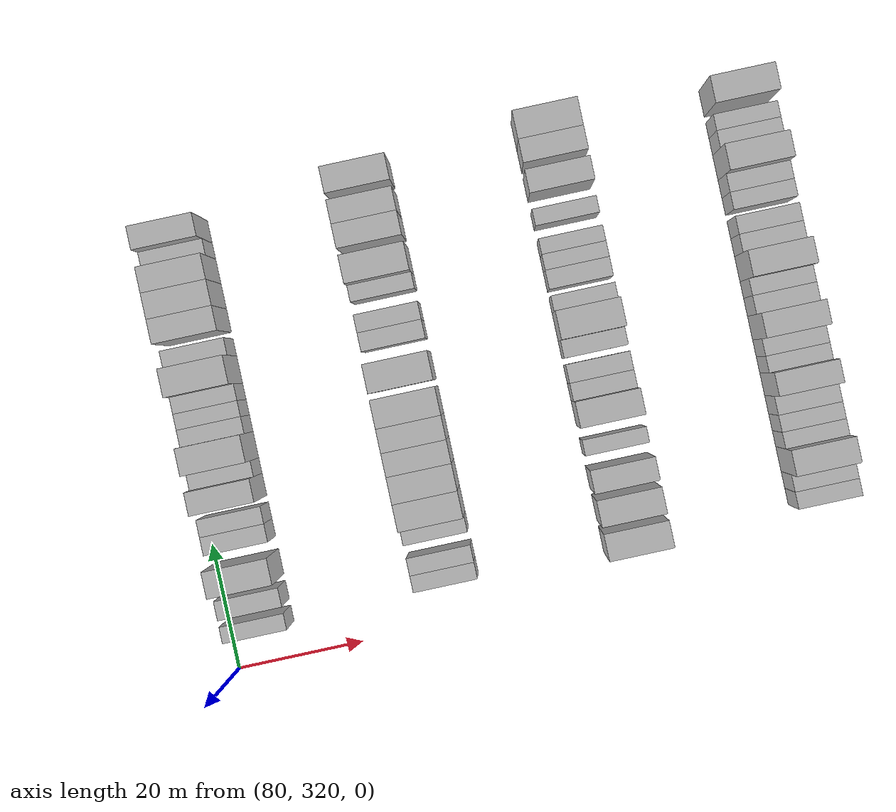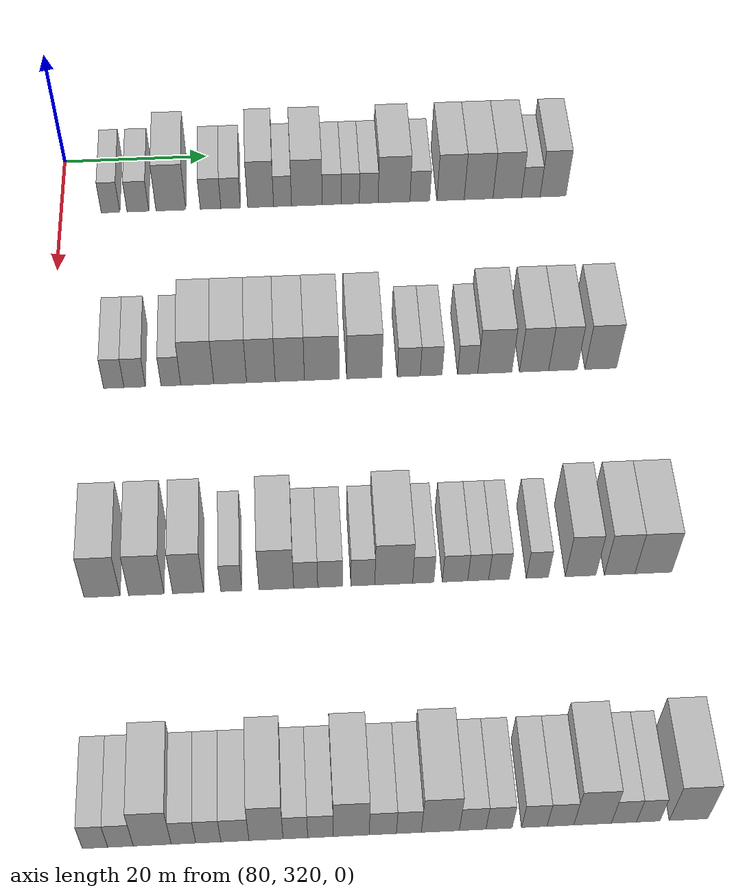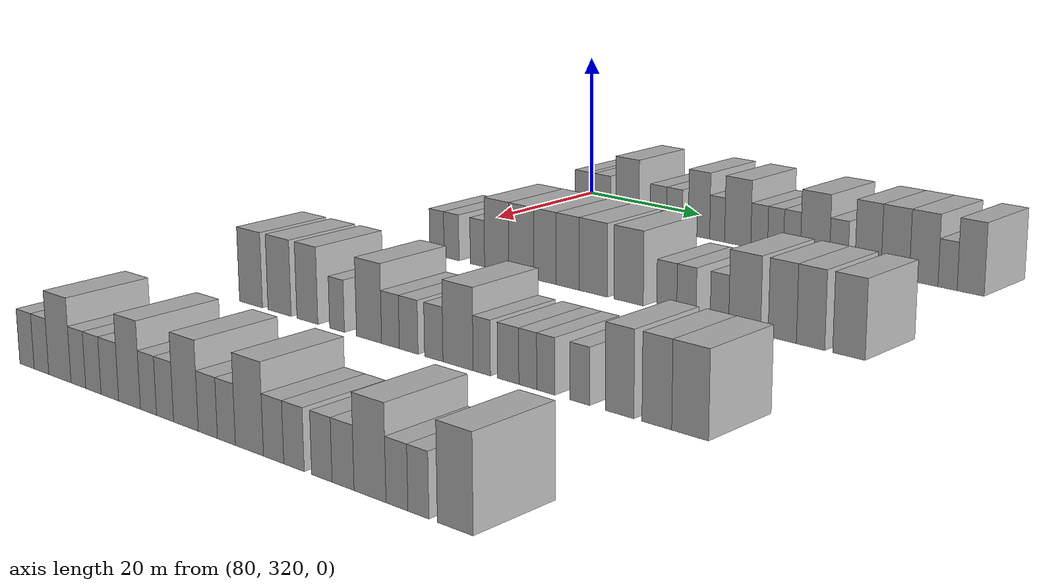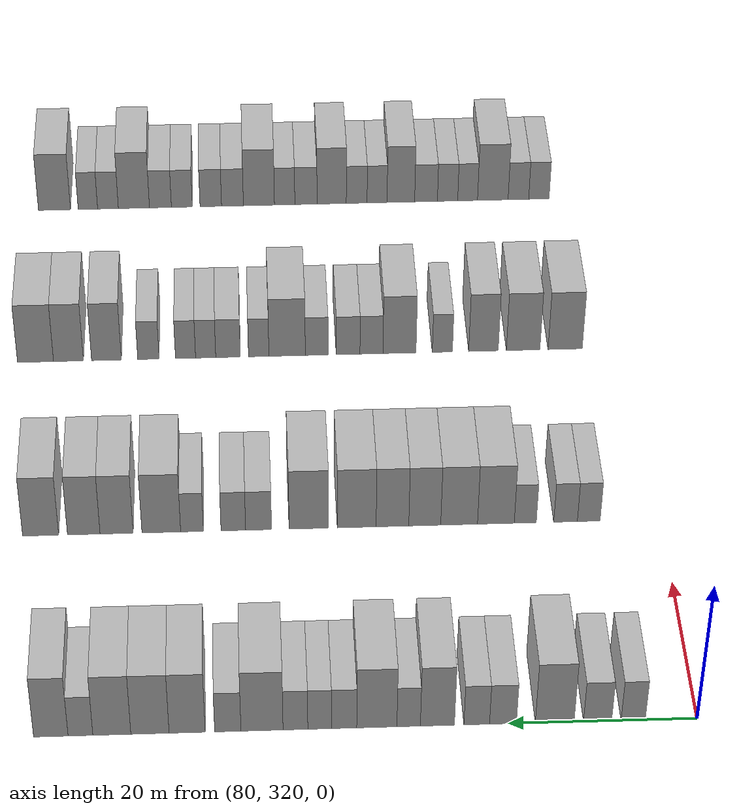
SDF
<sdf version="1.6">
 <world name="default">
  <model name="building_663">
   <static>1</static>
   <pose>85.0000 326.7861 0 0.000000 0.000000 0.000000</pose>
   <link name="link">
    <pose>0 0 3.00 0 0 0</pose>
    <collision name="collision"><geometry><box><size>10.0000 2.5689 6.0000</size></box></geometry></collision>
    <visual name="visual">
     <cast_shadows>0</cast_shadows>
     <geometry><box><size>10.0000 2.5689 6.0000</size></box></geometry>
     <material>
      <script>
       <uri>model://HANNAS_wall/materials/scripts</uri>
       <uri>model://HANNAS_wall/materials/textures</uri>
       <name>vrc/HANNAS_wall</name>
      </script>
     </material>
    </visual>
   </link>
  </model>
  <model name="building_664">
   <static>1</static>
   <pose>85.0000 330.5649 0 0.000000 0.000000 0.000000</pose>
   <link name="link">
    <pose>0 0 3.00 0 0 0</pose>
    <collision name="collision"><geometry><box><size>10.0000 2.9887 6.0000</size></box></geometry></collision>
    <visual name="visual">
     <cast_shadows>0</cast_shadows>
     <geometry><box><size>10.0000 2.9887 6.0000</size></box></geometry>
     <material>
      <script>
       <uri>model://HANNAS_wall/materials/scripts</uri>
       <uri>model://HANNAS_wall/materials/textures</uri>
       <name>vrc/HANNAS_wall</name>
      </script>
     </material>
    </visual>
   </link>
  </model>
  <model name="building_665">
   <static>1</static>
   <pose>85.0000 335.1152 0 0.000000 0.000000 0.000000</pose>
   <link name="link">
    <pose>0 0 4.50 0 0 0</pose>
    <collision name="collision"><geometry><box><size>10.0000 4.1118 9.0000</size></box></geometry></collision>
    <visual name="visual">
     <cast_shadows>0</cast_shadows>
     <geometry><box><size>10.0000 4.1118 9.0000</size></box></geometry>
     <material>
      <script>
       <uri>model://HANNAS_wall/materials/scripts</uri>
       <uri>model://HANNAS_wall/materials/textures</uri>
       <name>vrc/HANNAS_wall</name>
      </script>
     </material>
    </visual>
   </link>
  </model>
  <model name="building_666">
   <static>1</static>
   <pose>85.0000 340.5945 0 0.000000 0.000000 0.000000</pose>
   <link name="link">
    <pose>0 0 3.00 0 0 0</pose>
    <collision name="collision"><geometry><box><size>10.0000 2.8468 6.0000</size></box></geometry></collision>
    <visual name="visual">
     <cast_shadows>0</cast_shadows>
     <geometry><box><size>10.0000 2.8468 6.0000</size></box></geometry>
     <material>
      <script>
       <uri>model://HANNAS_wall/materials/scripts</uri>
       <uri>model://HANNAS_wall/materials/textures</uri>
       <name>vrc/HANNAS_wall</name>
      </script>
     </material>
    </visual>
   </link>
  </model>
  <model name="building_667">
   <static>1</static>
   <pose>85.0000 343.3754 0 0.000000 0.000000 0.000000</pose>
   <link name="link">
    <pose>0 0 3.00 0 0 0</pose>
    <collision name="collision"><geometry><box><size>10.0000 2.7151 6.0000</size></box></geometry></collision>
    <visual name="visual">
     <cast_shadows>0</cast_shadows>
     <geometry><box><size>10.0000 2.7151 6.0000</size></box></geometry>
     <material>
      <script>
       <uri>model://HANNAS_wall/materials/scripts</uri>
       <uri>model://HANNAS_wall/materials/textures</uri>
       <name>vrc/HANNAS_wall</name>
      </script>
     </material>
    </visual>
   </link>
  </model>
  <model name="building_668">
   <static>1</static>
   <pose>85.0000 347.5353 0 0.000000 0.000000 0.000000</pose>
   <link name="link">
    <pose>0 0 4.50 0 0 0</pose>
    <collision name="collision"><geometry><box><size>10.0000 3.6046 9.0000</size></box></geometry></collision>
    <visual name="visual">
     <cast_shadows>0</cast_shadows>
     <geometry><box><size>10.0000 3.6046 9.0000</size></box></geometry>
     <material>
      <script>
       <uri>model://HANNAS_wall/materials/scripts</uri>
       <uri>model://HANNAS_wall/materials/textures</uri>
       <name>vrc/HANNAS_wall</name>
      </script>
     </material>
    </visual>
   </link>
  </model>
  <model name="building_669">
   <static>1</static>
   <pose>85.0000 350.5778 0 0.000000 0.000000 0.000000</pose>
   <link name="link">
    <pose>0 0 3.00 0 0 0</pose>
    <collision name="collision"><geometry><box><size>10.0000 2.4804 6.0000</size></box></geometry></collision>
    <visual name="visual">
     <cast_shadows>0</cast_shadows>
     <geometry><box><size>10.0000 2.4804 6.0000</size></box></geometry>
     <material>
      <script>
       <uri>model://HANNAS_wall/materials/scripts</uri>
       <uri>model://HANNAS_wall/materials/textures</uri>
       <name>vrc/HANNAS_wall</name>
      </script>
     </material>
    </visual>
   </link>
  </model>
  <model name="building_670">
   <static>1</static>
   <pose>85.0000 353.9385 0 0.000000 0.000000 0.000000</pose>
   <link name="link">
    <pose>0 0 4.50 0 0 0</pose>
    <collision name="collision"><geometry><box><size>10.0000 4.2412 9.0000</size></box></geometry></collision>
    <visual name="visual">
     <cast_shadows>0</cast_shadows>
     <geometry><box><size>10.0000 4.2412 9.0000</size></box></geometry>
     <material>
      <script>
       <uri>model://HANNAS_wall/materials/scripts</uri>
       <uri>model://HANNAS_wall/materials/textures</uri>
       <name>vrc/HANNAS_wall</name>
      </script>
     </material>
    </visual>
   </link>
  </model>
  <model name="building_671">
   <static>1</static>
   <pose>85.0000 357.3929 0 0.000000 0.000000 0.000000</pose>
   <link name="link">
    <pose>0 0 3.00 0 0 0</pose>
    <collision name="collision"><geometry><box><size>10.0000 2.6676 6.0000</size></box></geometry></collision>
    <visual name="visual">
     <cast_shadows>0</cast_shadows>
     <geometry><box><size>10.0000 2.6676 6.0000</size></box></geometry>
     <material>
      <script>
       <uri>model://HANNAS_wall/materials/scripts</uri>
       <uri>model://HANNAS_wall/materials/textures</uri>
       <name>vrc/HANNAS_wall</name>
      </script>
     </material>
    </visual>
   </link>
  </model>
  <model name="building_672">
   <static>1</static>
   <pose>85.0000 359.9742 0 0.000000 0.000000 0.000000</pose>
   <link name="link">
    <pose>0 0 3.00 0 0 0</pose>
    <collision name="collision"><geometry><box><size>10.0000 2.4950 6.0000</size></box></geometry></collision>
    <visual name="visual">
     <cast_shadows>0</cast_shadows>
     <geometry><box><size>10.0000 2.4950 6.0000</size></box></geometry>
     <material>
      <script>
       <uri>model://HANNAS_wall/materials/scripts</uri>
       <uri>model://HANNAS_wall/materials/textures</uri>
       <name>vrc/HANNAS_wall</name>
      </script>
     </material>
    </visual>
   </link>
  </model>
  <model name="building_673">
   <static>1</static>
   <pose>85.0000 362.5278 0 0.000000 0.000000 0.000000</pose>
   <link name="link">
    <pose>0 0 3.00 0 0 0</pose>
    <collision name="collision"><geometry><box><size>10.0000 2.6120 6.0000</size></box></geometry></collision>
    <visual name="visual">
     <cast_shadows>0</cast_shadows>
     <geometry><box><size>10.0000 2.6120 6.0000</size></box></geometry>
     <material>
      <script>
       <uri>model://HANNAS_wall/materials/scripts</uri>
       <uri>model://HANNAS_wall/materials/textures</uri>
       <name>vrc/HANNAS_wall</name>
      </script>
     </material>
    </visual>
   </link>
  </model>
  <model name="building_674">
   <static>1</static>
   <pose>85.0000 366.0498 0 0.000000 0.000000 0.000000</pose>
   <link name="link">
    <pose>0 0 4.50 0 0 0</pose>
    <collision name="collision"><geometry><box><size>10.0000 4.4321 9.0000</size></box></geometry></collision>
    <visual name="visual">
     <cast_shadows>0</cast_shadows>
     <geometry><box><size>10.0000 4.4321 9.0000</size></box></geometry>
     <material>
      <script>
       <uri>model://HANNAS_wall/materials/scripts</uri>
       <uri>model://HANNAS_wall/materials/textures</uri>
       <name>vrc/HANNAS_wall</name>
      </script>
     </material>
    </visual>
   </link>
  </model>
  <model name="building_675">
   <static>1</static>
   <pose>85.0000 369.6471 0 0.000000 0.000000 0.000000</pose>
   <link name="link">
    <pose>0 0 3.00 0 0 0</pose>
    <collision name="collision"><geometry><box><size>10.0000 2.7623 6.0000</size></box></geometry></collision>
    <visual name="visual">
     <cast_shadows>0</cast_shadows>
     <geometry><box><size>10.0000 2.7623 6.0000</size></box></geometry>
     <material>
      <script>
       <uri>model://HANNAS_wall/materials/scripts</uri>
       <uri>model://HANNAS_wall/materials/textures</uri>
       <name>vrc/HANNAS_wall</name>
      </script>
     </material>
    </visual>
   </link>
  </model>
  <model name="building_676">
   <static>1</static>
   <pose>85.0000 373.9298 0 0.000000 0.000000 0.000000</pose>
   <link name="link">
    <pose>0 0 4.50 0 0 0</pose>
    <collision name="collision"><geometry><box><size>10.0000 3.8031 9.0000</size></box></geometry></collision>
    <visual name="visual">
     <cast_shadows>0</cast_shadows>
     <geometry><box><size>10.0000 3.8031 9.0000</size></box></geometry>
     <material>
      <script>
       <uri>model://HANNAS_wall/materials/scripts</uri>
       <uri>model://HANNAS_wall/materials/textures</uri>
       <name>vrc/HANNAS_wall</name>
      </script>
     </material>
    </visual>
   </link>
  </model>
  <model name="building_677">
   <static>1</static>
   <pose>85.0000 377.8405 0 0.000000 0.000000 0.000000</pose>
   <link name="link">
    <pose>0 0 4.50 0 0 0</pose>
    <collision name="collision"><geometry><box><size>10.0000 4.0183 9.0000</size></box></geometry></collision>
    <visual name="visual">
     <cast_shadows>0</cast_shadows>
     <geometry><box><size>10.0000 4.0183 9.0000</size></box></geometry>
     <material>
      <script>
       <uri>model://HANNAS_wall/materials/scripts</uri>
       <uri>model://HANNAS_wall/materials/textures</uri>
       <name>vrc/HANNAS_wall</name>
      </script>
     </material>
    </visual>
   </link>
  </model>
  <model name="building_678">
   <static>1</static>
   <pose>85.0000 381.8449 0 0.000000 0.000000 0.000000</pose>
   <link name="link">
    <pose>0 0 4.50 0 0 0</pose>
    <collision name="collision"><geometry><box><size>10.0000 3.9906 9.0000</size></box></geometry></collision>
    <visual name="visual">
     <cast_shadows>0</cast_shadows>
     <geometry><box><size>10.0000 3.9906 9.0000</size></box></geometry>
     <material>
      <script>
       <uri>model://HANNAS_wall/materials/scripts</uri>
       <uri>model://HANNAS_wall/materials/textures</uri>
       <name>vrc/HANNAS_wall</name>
      </script>
     </material>
    </visual>
   </link>
  </model>
  <model name="building_679">
   <static>1</static>
   <pose>85.0000 385.1407 0 0.000000 0.000000 0.000000</pose>
   <link name="link">
    <pose>0 0 3.00 0 0 0</pose>
    <collision name="collision"><geometry><box><size>10.0000 2.6009 6.0000</size></box></geometry></collision>
    <visual name="visual">
     <cast_shadows>0</cast_shadows>
     <geometry><box><size>10.0000 2.6009 6.0000</size></box></geometry>
     <material>
      <script>
       <uri>model://HANNAS_wall/materials/scripts</uri>
       <uri>model://HANNAS_wall/materials/textures</uri>
       <name>vrc/HANNAS_wall</name>
      </script>
     </material>
    </visual>
   </link>
  </model>
  <model name="building_680">
   <static>1</static>
   <pose>85.0000 388.2500 0 0.000000 0.000000 0.000000</pose>
   <link name="link">
    <pose>0 0 4.50 0 0 0</pose>
    <collision name="collision"><geometry><box><size>10.0000 3.6177 9.0000</size></box></geometry></collision>
    <visual name="visual">
     <cast_shadows>0</cast_shadows>
     <geometry><box><size>10.0000 3.6177 9.0000</size></box></geometry>
     <material>
      <script>
       <uri>model://HANNAS_wall/materials/scripts</uri>
       <uri>model://HANNAS_wall/materials/textures</uri>
       <name>vrc/HANNAS_wall</name>
      </script>
     </material>
    </visual>
   </link>
  </model>
  <model name="building_878">
   <static>1</static>
   <pose>115.0000 328.2393 0 0.000000 0.000000 0.000000</pose>
   <link name="link">
    <pose>0 0 3.00 0 0 0</pose>
    <collision name="collision"><geometry><box><size>10.0000 2.5994 6.0000</size></box></geometry></collision>
    <visual name="visual">
     <cast_shadows>0</cast_shadows>
     <geometry><box><size>10.0000 2.5994 6.0000</size></box></geometry>
     <material>
      <script>
       <uri>model://HANNAS_wall/materials/scripts</uri>
       <uri>model://HANNAS_wall/materials/textures</uri>
       <name>vrc/HANNAS_wall</name>
      </script>
     </material>
    </visual>
   </link>
  </model>
  <model name="building_879">
   <static>1</static>
   <pose>115.0000 330.8906 0 0.000000 0.000000 0.000000</pose>
   <link name="link">
    <pose>0 0 3.00 0 0 0</pose>
    <collision name="collision"><geometry><box><size>10.0000 2.7033 6.0000</size></box></geometry></collision>
    <visual name="visual">
     <cast_shadows>0</cast_shadows>
     <geometry><box><size>10.0000 2.7033 6.0000</size></box></geometry>
     <material>
      <script>
       <uri>model://HANNAS_wall/materials/scripts</uri>
       <uri>model://HANNAS_wall/materials/textures</uri>
       <name>vrc/HANNAS_wall</name>
      </script>
     </material>
    </visual>
   </link>
  </model>
  <model name="building_880">
   <static>1</static>
   <pose>115.0000 335.5021 0 0.000000 0.000000 0.000000</pose>
   <link name="link">
    <pose>0 0 3.00 0 0 0</pose>
    <collision name="collision"><geometry><box><size>10.0000 2.5196 6.0000</size></box></geometry></collision>
    <visual name="visual">
     <cast_shadows>0</cast_shadows>
     <geometry><box><size>10.0000 2.5196 6.0000</size></box></geometry>
     <material>
      <script>
       <uri>model://HANNAS_wall/materials/scripts</uri>
       <uri>model://HANNAS_wall/materials/textures</uri>
       <name>vrc/HANNAS_wall</name>
      </script>
     </material>
    </visual>
   </link>
  </model>
  <model name="building_881">
   <static>1</static>
   <pose>115.0000 338.8613 0 0.000000 0.000000 0.000000</pose>
   <link name="link">
    <pose>0 0 4.50 0 0 0</pose>
    <collision name="collision"><geometry><box><size>10.0000 4.1987 9.0000</size></box></geometry></collision>
    <visual name="visual">
     <cast_shadows>0</cast_shadows>
     <geometry><box><size>10.0000 4.1987 9.0000</size></box></geometry>
     <material>
      <script>
       <uri>model://HANNAS_wall/materials/scripts</uri>
       <uri>model://HANNAS_wall/materials/textures</uri>
       <name>vrc/HANNAS_wall</name>
      </script>
     </material>
    </visual>
   </link>
  </model>
  <model name="building_882">
   <static>1</static>
   <pose>115.0000 343.0595 0 0.000000 0.000000 0.000000</pose>
   <link name="link">
    <pose>0 0 4.50 0 0 0</pose>
    <collision name="collision"><geometry><box><size>10.0000 4.1978 9.0000</size></box></geometry></collision>
    <visual name="visual">
     <cast_shadows>0</cast_shadows>
     <geometry><box><size>10.0000 4.1978 9.0000</size></box></geometry>
     <material>
      <script>
       <uri>model://HANNAS_wall/materials/scripts</uri>
       <uri>model://HANNAS_wall/materials/textures</uri>
       <name>vrc/HANNAS_wall</name>
      </script>
     </material>
    </visual>
   </link>
  </model>
  <model name="building_883">
   <static>1</static>
   <pose>115.0000 346.9817 0 0.000000 0.000000 0.000000</pose>
   <link name="link">
    <pose>0 0 4.50 0 0 0</pose>
    <collision name="collision"><geometry><box><size>10.0000 3.6467 9.0000</size></box></geometry></collision>
    <visual name="visual">
     <cast_shadows>0</cast_shadows>
     <geometry><box><size>10.0000 3.6467 9.0000</size></box></geometry>
     <material>
      <script>
       <uri>model://HANNAS_wall/materials/scripts</uri>
       <uri>model://HANNAS_wall/materials/textures</uri>
       <name>vrc/HANNAS_wall</name>
      </script>
     </material>
    </visual>
   </link>
  </model>
  <model name="building_884">
   <static>1</static>
   <pose>115.0000 350.6683 0 0.000000 0.000000 0.000000</pose>
   <link name="link">
    <pose>0 0 4.50 0 0 0</pose>
    <collision name="collision"><geometry><box><size>10.0000 3.7265 9.0000</size></box></geometry></collision>
    <visual name="visual">
     <cast_shadows>0</cast_shadows>
     <geometry><box><size>10.0000 3.7265 9.0000</size></box></geometry>
     <material>
      <script>
       <uri>model://HANNAS_wall/materials/scripts</uri>
       <uri>model://HANNAS_wall/materials/textures</uri>
       <name>vrc/HANNAS_wall</name>
      </script>
     </material>
    </visual>
   </link>
  </model>
  <model name="building_885">
   <static>1</static>
   <pose>115.0000 354.7409 0 0.000000 0.000000 0.000000</pose>
   <link name="link">
    <pose>0 0 4.50 0 0 0</pose>
    <collision name="collision"><geometry><box><size>10.0000 4.4185 9.0000</size></box></geometry></collision>
    <visual name="visual">
     <cast_shadows>0</cast_shadows>
     <geometry><box><size>10.0000 4.4185 9.0000</size></box></geometry>
     <material>
      <script>
       <uri>model://HANNAS_wall/materials/scripts</uri>
       <uri>model://HANNAS_wall/materials/textures</uri>
       <name>vrc/HANNAS_wall</name>
      </script>
     </material>
    </visual>
   </link>
  </model>
  <model name="building_886">
   <static>1</static>
   <pose>115.0000 360.1925 0 0.000000 0.000000 0.000000</pose>
   <link name="link">
    <pose>0 0 4.50 0 0 0</pose>
    <collision name="collision"><geometry><box><size>10.0000 4.4847 9.0000</size></box></geometry></collision>
    <visual name="visual">
     <cast_shadows>0</cast_shadows>
     <geometry><box><size>10.0000 4.4847 9.0000</size></box></geometry>
     <material>
      <script>
       <uri>model://HANNAS_wall/materials/scripts</uri>
       <uri>model://HANNAS_wall/materials/textures</uri>
       <name>vrc/HANNAS_wall</name>
      </script>
     </material>
    </visual>
   </link>
  </model>
  <model name="building_887">
   <static>1</static>
   <pose>115.0000 365.9056 0 0.000000 0.000000 0.000000</pose>
   <link name="link">
    <pose>0 0 3.00 0 0 0</pose>
    <collision name="collision"><geometry><box><size>10.0000 2.9414 6.0000</size></box></geometry></collision>
    <visual name="visual">
     <cast_shadows>0</cast_shadows>
     <geometry><box><size>10.0000 2.9414 6.0000</size></box></geometry>
     <material>
      <script>
       <uri>model://HANNAS_wall/materials/scripts</uri>
       <uri>model://HANNAS_wall/materials/textures</uri>
       <name>vrc/HANNAS_wall</name>
      </script>
     </material>
    </visual>
   </link>
  </model>
  <model name="building_888">
   <static>1</static>
   <pose>115.0000 368.7758 0 0.000000 0.000000 0.000000</pose>
   <link name="link">
    <pose>0 0 3.00 0 0 0</pose>
    <collision name="collision"><geometry><box><size>10.0000 2.7990 6.0000</size></box></geometry></collision>
    <visual name="visual">
     <cast_shadows>0</cast_shadows>
     <geometry><box><size>10.0000 2.7990 6.0000</size></box></geometry>
     <material>
      <script>
       <uri>model://HANNAS_wall/materials/scripts</uri>
       <uri>model://HANNAS_wall/materials/textures</uri>
       <name>vrc/HANNAS_wall</name>
      </script>
     </material>
    </visual>
   </link>
  </model>
  <model name="building_889">
   <static>1</static>
   <pose>115.0000 373.4700 0 0.000000 0.000000 0.000000</pose>
   <link name="link">
    <pose>0 0 3.00 0 0 0</pose>
    <collision name="collision"><geometry><box><size>10.0000 2.5893 6.0000</size></box></geometry></collision>
    <visual name="visual">
     <cast_shadows>0</cast_shadows>
     <geometry><box><size>10.0000 2.5893 6.0000</size></box></geometry>
     <material>
      <script>
       <uri>model://HANNAS_wall/materials/scripts</uri>
       <uri>model://HANNAS_wall/materials/textures</uri>
       <name>vrc/HANNAS_wall</name>
      </script>
     </material>
    </visual>
   </link>
  </model>
  <model name="building_890">
   <static>1</static>
   <pose>115.0000 376.9590 0 0.000000 0.000000 0.000000</pose>
   <link name="link">
    <pose>0 0 4.50 0 0 0</pose>
    <collision name="collision"><geometry><box><size>10.0000 4.3886 9.0000</size></box></geometry></collision>
    <visual name="visual">
     <cast_shadows>0</cast_shadows>
     <geometry><box><size>10.0000 4.3886 9.0000</size></box></geometry>
     <material>
      <script>
       <uri>model://HANNAS_wall/materials/scripts</uri>
       <uri>model://HANNAS_wall/materials/textures</uri>
       <name>vrc/HANNAS_wall</name>
      </script>
     </material>
    </visual>
   </link>
  </model>
  <model name="building_891">
   <static>1</static>
   <pose>115.0000 382.0297 0 0.000000 0.000000 0.000000</pose>
   <link name="link">
    <pose>0 0 4.50 0 0 0</pose>
    <collision name="collision"><geometry><box><size>10.0000 3.7528 9.0000</size></box></geometry></collision>
    <visual name="visual">
     <cast_shadows>0</cast_shadows>
     <geometry><box><size>10.0000 3.7528 9.0000</size></box></geometry>
     <material>
      <script>
       <uri>model://HANNAS_wall/materials/scripts</uri>
       <uri>model://HANNAS_wall/materials/textures</uri>
       <name>vrc/HANNAS_wall</name>
      </script>
     </material>
    </visual>
   </link>
  </model>
  <model name="building_892">
   <static>1</static>
   <pose>115.0000 385.7504 0 0.000000 0.000000 0.000000</pose>
   <link name="link">
    <pose>0 0 4.50 0 0 0</pose>
    <collision name="collision"><geometry><box><size>10.0000 3.6888 9.0000</size></box></geometry></collision>
    <visual name="visual">
     <cast_shadows>0</cast_shadows>
     <geometry><box><size>10.0000 3.6888 9.0000</size></box></geometry>
     <material>
      <script>
       <uri>model://HANNAS_wall/materials/scripts</uri>
       <uri>model://HANNAS_wall/materials/textures</uri>
       <name>vrc/HANNAS_wall</name>
      </script>
     </material>
    </visual>
   </link>
  </model>
  <model name="building_893">
   <static>1</static>
   <pose>115.0000 390.6322 0 0.000000 0.000000 0.000000</pose>
   <link name="link">
    <pose>0 0 4.50 0 0 0</pose>
    <collision name="collision"><geometry><box><size>10.0000 4.0748 9.0000</size></box></geometry></collision>
    <visual name="visual">
     <cast_shadows>0</cast_shadows>
     <geometry><box><size>10.0000 4.0748 9.0000</size></box></geometry>
     <material>
      <script>
       <uri>model://HANNAS_wall/materials/scripts</uri>
       <uri>model://HANNAS_wall/materials/textures</uri>
       <name>vrc/HANNAS_wall</name>
      </script>
     </material>
    </visual>
   </link>
  </model>
  <model name="building_1111">
   <static>1</static>
   <pose>145.0000 327.8745 0 0.000000 0.000000 0.000000</pose>
   <link name="link">
    <pose>0 0 4.50 0 0 0</pose>
    <collision name="collision"><geometry><box><size>10.0000 4.1916 9.0000</size></box></geometry></collision>
    <visual name="visual">
     <cast_shadows>0</cast_shadows>
     <geometry><box><size>10.0000 4.1916 9.0000</size></box></geometry>
     <material>
      <script>
       <uri>model://HANNAS_wall/materials/scripts</uri>
       <uri>model://HANNAS_wall/materials/textures</uri>
       <name>vrc/HANNAS_wall</name>
      </script>
     </material>
    </visual>
   </link>
  </model>
  <model name="building_1112">
   <static>1</static>
   <pose>145.0000 333.0299 0 0.000000 0.000000 0.000000</pose>
   <link name="link">
    <pose>0 0 4.50 0 0 0</pose>
    <collision name="collision"><geometry><box><size>10.0000 4.1192 9.0000</size></box></geometry></collision>
    <visual name="visual">
     <cast_shadows>0</cast_shadows>
     <geometry><box><size>10.0000 4.1192 9.0000</size></box></geometry>
     <material>
      <script>
       <uri>model://HANNAS_wall/materials/scripts</uri>
       <uri>model://HANNAS_wall/materials/textures</uri>
       <name>vrc/HANNAS_wall</name>
      </script>
     </material>
    </visual>
   </link>
  </model>
  <model name="building_1113">
   <static>1</static>
   <pose>145.0000 337.8977 0 0.000000 0.000000 0.000000</pose>
   <link name="link">
    <pose>0 0 4.50 0 0 0</pose>
    <collision name="collision"><geometry><box><size>10.0000 3.6164 9.0000</size></box></geometry></collision>
    <visual name="visual">
     <cast_shadows>0</cast_shadows>
     <geometry><box><size>10.0000 3.6164 9.0000</size></box></geometry>
     <material>
      <script>
       <uri>model://HANNAS_wall/materials/scripts</uri>
       <uri>model://HANNAS_wall/materials/textures</uri>
       <name>vrc/HANNAS_wall</name>
      </script>
     </material>
    </visual>
   </link>
  </model>
  <model name="building_1114">
   <static>1</static>
   <pose>145.0000 342.9376 0 0.000000 0.000000 0.000000</pose>
   <link name="link">
    <pose>0 0 3.00 0 0 0</pose>
    <collision name="collision"><geometry><box><size>10.0000 2.4633 6.0000</size></box></geometry></collision>
    <visual name="visual">
     <cast_shadows>0</cast_shadows>
     <geometry><box><size>10.0000 2.4633 6.0000</size></box></geometry>
     <material>
      <script>
       <uri>model://HANNAS_wall/materials/scripts</uri>
       <uri>model://HANNAS_wall/materials/textures</uri>
       <name>vrc/HANNAS_wall</name>
      </script>
     </material>
    </visual>
   </link>
  </model>
  <model name="building_1115">
   <static>1</static>
   <pose>145.0000 348.1923 0 0.000000 0.000000 0.000000</pose>
   <link name="link">
    <pose>0 0 4.50 0 0 0</pose>
    <collision name="collision"><geometry><box><size>10.0000 4.0461 9.0000</size></box></geometry></collision>
    <visual name="visual">
     <cast_shadows>0</cast_shadows>
     <geometry><box><size>10.0000 4.0461 9.0000</size></box></geometry>
     <material>
      <script>
       <uri>model://HANNAS_wall/materials/scripts</uri>
       <uri>model://HANNAS_wall/materials/textures</uri>
       <name>vrc/HANNAS_wall</name>
      </script>
     </material>
    </visual>
   </link>
  </model>
  <model name="building_1116">
   <static>1</static>
   <pose>145.0000 351.6194 0 0.000000 0.000000 0.000000</pose>
   <link name="link">
    <pose>0 0 3.00 0 0 0</pose>
    <collision name="collision"><geometry><box><size>10.0000 2.8081 6.0000</size></box></geometry></collision>
    <visual name="visual">
     <cast_shadows>0</cast_shadows>
     <geometry><box><size>10.0000 2.8081 6.0000</size></box></geometry>
     <material>
      <script>
       <uri>model://HANNAS_wall/materials/scripts</uri>
       <uri>model://HANNAS_wall/materials/textures</uri>
       <name>vrc/HANNAS_wall</name>
      </script>
     </material>
    </visual>
   </link>
  </model>
  <model name="building_1117">
   <static>1</static>
   <pose>145.0000 354.4719 0 0.000000 0.000000 0.000000</pose>
   <link name="link">
    <pose>0 0 3.00 0 0 0</pose>
    <collision name="collision"><geometry><box><size>10.0000 2.8970 6.0000</size></box></geometry></collision>
    <visual name="visual">
     <cast_shadows>0</cast_shadows>
     <geometry><box><size>10.0000 2.8970 6.0000</size></box></geometry>
     <material>
      <script>
       <uri>model://HANNAS_wall/materials/scripts</uri>
       <uri>model://HANNAS_wall/materials/textures</uri>
       <name>vrc/HANNAS_wall</name>
      </script>
     </material>
    </visual>
   </link>
  </model>
  <model name="building_1118">
   <static>1</static>
   <pose>145.0000 358.3125 0 0.000000 0.000000 0.000000</pose>
   <link name="link">
    <pose>0 0 3.00 0 0 0</pose>
    <collision name="collision"><geometry><box><size>10.0000 2.7842 6.0000</size></box></geometry></collision>
    <visual name="visual">
     <cast_shadows>0</cast_shadows>
     <geometry><box><size>10.0000 2.7842 6.0000</size></box></geometry>
     <material>
      <script>
       <uri>model://HANNAS_wall/materials/scripts</uri>
       <uri>model://HANNAS_wall/materials/textures</uri>
       <name>vrc/HANNAS_wall</name>
      </script>
     </material>
    </visual>
   </link>
  </model>
  <model name="building_1119">
   <static>1</static>
   <pose>145.0000 361.9262 0 0.000000 0.000000 0.000000</pose>
   <link name="link">
    <pose>0 0 4.50 0 0 0</pose>
    <collision name="collision"><geometry><box><size>10.0000 4.4432 9.0000</size></box></geometry></collision>
    <visual name="visual">
     <cast_shadows>0</cast_shadows>
     <geometry><box><size>10.0000 4.4432 9.0000</size></box></geometry>
     <material>
      <script>
       <uri>model://HANNAS_wall/materials/scripts</uri>
       <uri>model://HANNAS_wall/materials/textures</uri>
       <name>vrc/HANNAS_wall</name>
      </script>
     </material>
    </visual>
   </link>
  </model>
  <model name="building_1120">
   <static>1</static>
   <pose>145.0000 365.3919 0 0.000000 0.000000 0.000000</pose>
   <link name="link">
    <pose>0 0 3.00 0 0 0</pose>
    <collision name="collision"><geometry><box><size>10.0000 2.4883 6.0000</size></box></geometry></collision>
    <visual name="visual">
     <cast_shadows>0</cast_shadows>
     <geometry><box><size>10.0000 2.4883 6.0000</size></box></geometry>
     <material>
      <script>
       <uri>model://HANNAS_wall/materials/scripts</uri>
       <uri>model://HANNAS_wall/materials/textures</uri>
       <name>vrc/HANNAS_wall</name>
      </script>
     </material>
    </visual>
   </link>
  </model>
  <model name="building_1121">
   <static>1</static>
   <pose>145.0000 369.1336 0 0.000000 0.000000 0.000000</pose>
   <link name="link">
    <pose>0 0 3.00 0 0 0</pose>
    <collision name="collision"><geometry><box><size>10.0000 2.9950 6.0000</size></box></geometry></collision>
    <visual name="visual">
     <cast_shadows>0</cast_shadows>
     <geometry><box><size>10.0000 2.9950 6.0000</size></box></geometry>
     <material>
      <script>
       <uri>model://HANNAS_wall/materials/scripts</uri>
       <uri>model://HANNAS_wall/materials/textures</uri>
       <name>vrc/HANNAS_wall</name>
      </script>
     </material>
    </visual>
   </link>
  </model>
  <model name="building_1122">
   <static>1</static>
   <pose>145.0000 371.8609 0 0.000000 0.000000 0.000000</pose>
   <link name="link">
    <pose>0 0 3.00 0 0 0</pose>
    <collision name="collision"><geometry><box><size>10.0000 2.4595 6.0000</size></box></geometry></collision>
    <visual name="visual">
     <cast_shadows>0</cast_shadows>
     <geometry><box><size>10.0000 2.4595 6.0000</size></box></geometry>
     <material>
      <script>
       <uri>model://HANNAS_wall/materials/scripts</uri>
       <uri>model://HANNAS_wall/materials/textures</uri>
       <name>vrc/HANNAS_wall</name>
      </script>
     </material>
    </visual>
   </link>
  </model>
  <model name="building_1123">
   <static>1</static>
   <pose>145.0000 374.3139 0 0.000000 0.000000 0.000000</pose>
   <link name="link">
    <pose>0 0 3.00 0 0 0</pose>
    <collision name="collision"><geometry><box><size>10.0000 2.4465 6.0000</size></box></geometry></collision>
    <visual name="visual">
     <cast_shadows>0</cast_shadows>
     <geometry><box><size>10.0000 2.4465 6.0000</size></box></geometry>
     <material>
      <script>
       <uri>model://HANNAS_wall/materials/scripts</uri>
       <uri>model://HANNAS_wall/materials/textures</uri>
       <name>vrc/HANNAS_wall</name>
      </script>
     </material>
    </visual>
   </link>
  </model>
  <model name="building_1124">
   <static>1</static>
   <pose>145.0000 378.8353 0 0.000000 0.000000 0.000000</pose>
   <link name="link">
    <pose>0 0 3.00 0 0 0</pose>
    <collision name="collision"><geometry><box><size>10.0000 2.5962 6.0000</size></box></geometry></collision>
    <visual name="visual">
     <cast_shadows>0</cast_shadows>
     <geometry><box><size>10.0000 2.5962 6.0000</size></box></geometry>
     <material>
      <script>
       <uri>model://HANNAS_wall/materials/scripts</uri>
       <uri>model://HANNAS_wall/materials/textures</uri>
       <name>vrc/HANNAS_wall</name>
      </script>
     </material>
    </visual>
   </link>
  </model>
  <model name="building_1125">
   <static>1</static>
   <pose>145.0000 383.9418 0 0.000000 0.000000 0.000000</pose>
   <link name="link">
    <pose>0 0 4.50 0 0 0</pose>
    <collision name="collision"><geometry><box><size>10.0000 3.6170 9.0000</size></box></geometry></collision>
    <visual name="visual">
     <cast_shadows>0</cast_shadows>
     <geometry><box><size>10.0000 3.6170 9.0000</size></box></geometry>
     <material>
      <script>
       <uri>model://HANNAS_wall/materials/scripts</uri>
       <uri>model://HANNAS_wall/materials/textures</uri>
       <name>vrc/HANNAS_wall</name>
      </script>
     </material>
    </visual>
   </link>
  </model>
  <model name="building_1126">
   <static>1</static>
   <pose>145.0000 388.5656 0 0.000000 0.000000 0.000000</pose>
   <link name="link">
    <pose>0 0 4.50 0 0 0</pose>
    <collision name="collision"><geometry><box><size>10.0000 3.6305 9.0000</size></box></geometry></collision>
    <visual name="visual">
     <cast_shadows>0</cast_shadows>
     <geometry><box><size>10.0000 3.6305 9.0000</size></box></geometry>
     <material>
      <script>
       <uri>model://HANNAS_wall/materials/scripts</uri>
       <uri>model://HANNAS_wall/materials/textures</uri>
       <name>vrc/HANNAS_wall</name>
      </script>
     </material>
    </visual>
   </link>
  </model>
  <model name="building_1127">
   <static>1</static>
   <pose>145.0000 392.5653 0 0.000000 0.000000 0.000000</pose>
   <link name="link">
    <pose>0 0 4.50 0 0 0</pose>
    <collision name="collision"><geometry><box><size>10.0000 4.3689 9.0000</size></box></geometry></collision>
    <visual name="visual">
     <cast_shadows>0</cast_shadows>
     <geometry><box><size>10.0000 4.3689 9.0000</size></box></geometry>
     <material>
      <script>
       <uri>model://HANNAS_wall/materials/scripts</uri>
       <uri>model://HANNAS_wall/materials/textures</uri>
       <name>vrc/HANNAS_wall</name>
      </script>
     </material>
    </visual>
   </link>
  </model>
  <model name="building_1332">
   <static>1</static>
   <pose>175.0000 328.2516 0 0.000000 0.000000 0.000000</pose>
   <link name="link">
    <pose>0 0 3.00 0 0 0</pose>
    <collision name="collision"><geometry><box><size>10.0000 2.6728 6.0000</size></box></geometry></collision>
    <visual name="visual">
     <cast_shadows>0</cast_shadows>
     <geometry><box><size>10.0000 2.6728 6.0000</size></box></geometry>
     <material>
      <script>
       <uri>model://HANNAS_wall/materials/scripts</uri>
       <uri>model://HANNAS_wall/materials/textures</uri>
       <name>vrc/HANNAS_wall</name>
      </script>
     </material>
    </visual>
   </link>
  </model>
  <model name="building_1333">
   <static>1</static>
   <pose>175.0000 330.9384 0 0.000000 0.000000 0.000000</pose>
   <link name="link">
    <pose>0 0 3.00 0 0 0</pose>
    <collision name="collision"><geometry><box><size>10.0000 2.7007 6.0000</size></box></geometry></collision>
    <visual name="visual">
     <cast_shadows>0</cast_shadows>
     <geometry><box><size>10.0000 2.7007 6.0000</size></box></geometry>
     <material>
      <script>
       <uri>model://HANNAS_wall/materials/scripts</uri>
       <uri>model://HANNAS_wall/materials/textures</uri>
       <name>vrc/HANNAS_wall</name>
      </script>
     </material>
    </visual>
   </link>
  </model>
  <model name="building_1334">
   <static>1</static>
   <pose>175.0000 334.2928 0 0.000000 0.000000 0.000000</pose>
   <link name="link">
    <pose>0 0 4.50 0 0 0</pose>
    <collision name="collision"><geometry><box><size>10.0000 4.0082 9.0000</size></box></geometry></collision>
    <visual name="visual">
     <cast_shadows>0</cast_shadows>
     <geometry><box><size>10.0000 4.0082 9.0000</size></box></geometry>
     <material>
      <script>
       <uri>model://HANNAS_wall/materials/scripts</uri>
       <uri>model://HANNAS_wall/materials/textures</uri>
       <name>vrc/HANNAS_wall</name>
      </script>
     </material>
    </visual>
   </link>
  </model>
  <model name="building_1335">
   <static>1</static>
   <pose>175.0000 337.5940 0 0.000000 0.000000 0.000000</pose>
   <link name="link">
    <pose>0 0 3.00 0 0 0</pose>
    <collision name="collision"><geometry><box><size>10.0000 2.5941 6.0000</size></box></geometry></collision>
    <visual name="visual">
     <cast_shadows>0</cast_shadows>
     <geometry><box><size>10.0000 2.5941 6.0000</size></box></geometry>
     <material>
      <script>
       <uri>model://HANNAS_wall/materials/scripts</uri>
       <uri>model://HANNAS_wall/materials/textures</uri>
       <name>vrc/HANNAS_wall</name>
      </script>
     </material>
    </visual>
   </link>
  </model>
  <model name="building_1336">
   <static>1</static>
   <pose>175.0000 340.2186 0 0.000000 0.000000 0.000000</pose>
   <link name="link">
    <pose>0 0 3.00 0 0 0</pose>
    <collision name="collision"><geometry><box><size>10.0000 2.6553 6.0000</size></box></geometry></collision>
    <visual name="visual">
     <cast_shadows>0</cast_shadows>
     <geometry><box><size>10.0000 2.6553 6.0000</size></box></geometry>
     <material>
      <script>
       <uri>model://HANNAS_wall/materials/scripts</uri>
       <uri>model://HANNAS_wall/materials/textures</uri>
       <name>vrc/HANNAS_wall</name>
      </script>
     </material>
    </visual>
   </link>
  </model>
  <model name="building_1337">
   <static>1</static>
   <pose>175.0000 343.0371 0 0.000000 0.000000 0.000000</pose>
   <link name="link">
    <pose>0 0 3.00 0 0 0</pose>
    <collision name="collision"><geometry><box><size>10.0000 2.9816 6.0000</size></box></geometry></collision>
    <visual name="visual">
     <cast_shadows>0</cast_shadows>
     <geometry><box><size>10.0000 2.9816 6.0000</size></box></geometry>
     <material>
      <script>
       <uri>model://HANNAS_wall/materials/scripts</uri>
       <uri>model://HANNAS_wall/materials/textures</uri>
       <name>vrc/HANNAS_wall</name>
      </script>
     </material>
    </visual>
   </link>
  </model>
  <model name="building_1338">
   <static>1</static>
   <pose>175.0000 346.3339 0 0.000000 0.000000 0.000000</pose>
   <link name="link">
    <pose>0 0 4.50 0 0 0</pose>
    <collision name="collision"><geometry><box><size>10.0000 3.6120 9.0000</size></box></geometry></collision>
    <visual name="visual">
     <cast_shadows>0</cast_shadows>
     <geometry><box><size>10.0000 3.6120 9.0000</size></box></geometry>
     <material>
      <script>
       <uri>model://HANNAS_wall/materials/scripts</uri>
       <uri>model://HANNAS_wall/materials/textures</uri>
       <name>vrc/HANNAS_wall</name>
      </script>
     </material>
    </visual>
   </link>
  </model>
  <model name="building_1339">
   <static>1</static>
   <pose>175.0000 349.4428 0 0.000000 0.000000 0.000000</pose>
   <link name="link">
    <pose>0 0 3.00 0 0 0</pose>
    <collision name="collision"><geometry><box><size>10.0000 2.6057 6.0000</size></box></geometry></collision>
    <visual name="visual">
     <cast_shadows>0</cast_shadows>
     <geometry><box><size>10.0000 2.6057 6.0000</size></box></geometry>
     <material>
      <script>
       <uri>model://HANNAS_wall/materials/scripts</uri>
       <uri>model://HANNAS_wall/materials/textures</uri>
       <name>vrc/HANNAS_wall</name>
      </script>
     </material>
    </visual>
   </link>
  </model>
  <model name="building_1340">
   <static>1</static>
   <pose>175.0000 352.1041 0 0.000000 0.000000 0.000000</pose>
   <link name="link">
    <pose>0 0 3.00 0 0 0</pose>
    <collision name="collision"><geometry><box><size>10.0000 2.7169 6.0000</size></box></geometry></collision>
    <visual name="visual">
     <cast_shadows>0</cast_shadows>
     <geometry><box><size>10.0000 2.7169 6.0000</size></box></geometry>
     <material>
      <script>
       <uri>model://HANNAS_wall/materials/scripts</uri>
       <uri>model://HANNAS_wall/materials/textures</uri>
       <name>vrc/HANNAS_wall</name>
      </script>
     </material>
    </visual>
   </link>
  </model>
  <model name="building_1341">
   <static>1</static>
   <pose>175.0000 355.3723 0 0.000000 0.000000 0.000000</pose>
   <link name="link">
    <pose>0 0 4.50 0 0 0</pose>
    <collision name="collision"><geometry><box><size>10.0000 3.8195 9.0000</size></box></geometry></collision>
    <visual name="visual">
     <cast_shadows>0</cast_shadows>
     <geometry><box><size>10.0000 3.8195 9.0000</size></box></geometry>
     <material>
      <script>
       <uri>model://HANNAS_wall/materials/scripts</uri>
       <uri>model://HANNAS_wall/materials/textures</uri>
       <name>vrc/HANNAS_wall</name>
      </script>
     </material>
    </visual>
   </link>
  </model>
  <model name="building_1342">
   <static>1</static>
   <pose>175.0000 358.7310 0 0.000000 0.000000 0.000000</pose>
   <link name="link">
    <pose>0 0 3.00 0 0 0</pose>
    <collision name="collision"><geometry><box><size>10.0000 2.8981 6.0000</size></box></geometry></collision>
    <visual name="visual">
     <cast_shadows>0</cast_shadows>
     <geometry><box><size>10.0000 2.8981 6.0000</size></box></geometry>
     <material>
      <script>
       <uri>model://HANNAS_wall/materials/scripts</uri>
       <uri>model://HANNAS_wall/materials/textures</uri>
       <name>vrc/HANNAS_wall</name>
      </script>
     </material>
    </visual>
   </link>
  </model>
  <model name="building_1343">
   <static>1</static>
   <pose>175.0000 361.5084 0 0.000000 0.000000 0.000000</pose>
   <link name="link">
    <pose>0 0 3.00 0 0 0</pose>
    <collision name="collision"><geometry><box><size>10.0000 2.6567 6.0000</size></box></geometry></collision>
    <visual name="visual">
     <cast_shadows>0</cast_shadows>
     <geometry><box><size>10.0000 2.6567 6.0000</size></box></geometry>
     <material>
      <script>
       <uri>model://HANNAS_wall/materials/scripts</uri>
       <uri>model://HANNAS_wall/materials/textures</uri>
       <name>vrc/HANNAS_wall</name>
      </script>
     </material>
    </visual>
   </link>
  </model>
  <model name="building_1344">
   <static>1</static>
   <pose>175.0000 364.8599 0 0.000000 0.000000 0.000000</pose>
   <link name="link">
    <pose>0 0 4.50 0 0 0</pose>
    <collision name="collision"><geometry><box><size>10.0000 4.0463 9.0000</size></box></geometry></collision>
    <visual name="visual">
     <cast_shadows>0</cast_shadows>
     <geometry><box><size>10.0000 4.0463 9.0000</size></box></geometry>
     <material>
      <script>
       <uri>model://HANNAS_wall/materials/scripts</uri>
       <uri>model://HANNAS_wall/materials/textures</uri>
       <name>vrc/HANNAS_wall</name>
      </script>
     </material>
    </visual>
   </link>
  </model>
  <model name="building_1345">
   <static>1</static>
   <pose>175.0000 368.3076 0 0.000000 0.000000 0.000000</pose>
   <link name="link">
    <pose>0 0 3.00 0 0 0</pose>
    <collision name="collision"><geometry><box><size>10.0000 2.8491 6.0000</size></box></geometry></collision>
    <visual name="visual">
     <cast_shadows>0</cast_shadows>
     <geometry><box><size>10.0000 2.8491 6.0000</size></box></geometry>
     <material>
      <script>
       <uri>model://HANNAS_wall/materials/scripts</uri>
       <uri>model://HANNAS_wall/materials/textures</uri>
       <name>vrc/HANNAS_wall</name>
      </script>
     </material>
    </visual>
   </link>
  </model>
  <model name="building_1346">
   <static>1</static>
   <pose>175.0000 371.1347 0 0.000000 0.000000 0.000000</pose>
   <link name="link">
    <pose>0 0 3.00 0 0 0</pose>
    <collision name="collision"><geometry><box><size>10.0000 2.8052 6.0000</size></box></geometry></collision>
    <visual name="visual">
     <cast_shadows>0</cast_shadows>
     <geometry><box><size>10.0000 2.8052 6.0000</size></box></geometry>
     <material>
      <script>
       <uri>model://HANNAS_wall/materials/scripts</uri>
       <uri>model://HANNAS_wall/materials/textures</uri>
       <name>vrc/HANNAS_wall</name>
      </script>
     </material>
    </visual>
   </link>
  </model>
  <model name="building_1347">
   <static>1</static>
   <pose>175.0000 374.9012 0 0.000000 0.000000 0.000000</pose>
   <link name="link">
    <pose>0 0 3.00 0 0 0</pose>
    <collision name="collision"><geometry><box><size>10.0000 2.7277 6.0000</size></box></geometry></collision>
    <visual name="visual">
     <cast_shadows>0</cast_shadows>
     <geometry><box><size>10.0000 2.7277 6.0000</size></box></geometry>
     <material>
      <script>
       <uri>model://HANNAS_wall/materials/scripts</uri>
       <uri>model://HANNAS_wall/materials/textures</uri>
       <name>vrc/HANNAS_wall</name>
      </script>
     </material>
    </visual>
   </link>
  </model>
  <model name="building_1348">
   <static>1</static>
   <pose>175.0000 377.6948 0 0.000000 0.000000 0.000000</pose>
   <link name="link">
    <pose>0 0 3.00 0 0 0</pose>
    <collision name="collision"><geometry><box><size>10.0000 2.8595 6.0000</size></box></geometry></collision>
    <visual name="visual">
     <cast_shadows>0</cast_shadows>
     <geometry><box><size>10.0000 2.8595 6.0000</size></box></geometry>
     <material>
      <script>
       <uri>model://HANNAS_wall/materials/scripts</uri>
       <uri>model://HANNAS_wall/materials/textures</uri>
       <name>vrc/HANNAS_wall</name>
      </script>
     </material>
    </visual>
   </link>
  </model>
  <model name="building_1349">
   <static>1</static>
   <pose>175.0000 381.1459 0 0.000000 0.000000 0.000000</pose>
   <link name="link">
    <pose>0 0 4.50 0 0 0</pose>
    <collision name="collision"><geometry><box><size>10.0000 4.0428 9.0000</size></box></geometry></collision>
    <visual name="visual">
     <cast_shadows>0</cast_shadows>
     <geometry><box><size>10.0000 4.0428 9.0000</size></box></geometry>
     <material>
      <script>
       <uri>model://HANNAS_wall/materials/scripts</uri>
       <uri>model://HANNAS_wall/materials/textures</uri>
       <name>vrc/HANNAS_wall</name>
      </script>
     </material>
    </visual>
   </link>
  </model>
  <model name="building_1350">
   <static>1</static>
   <pose>175.0000 384.5149 0 0.000000 0.000000 0.000000</pose>
   <link name="link">
    <pose>0 0 3.00 0 0 0</pose>
    <collision name="collision"><geometry><box><size>10.0000 2.6952 6.0000</size></box></geometry></collision>
    <visual name="visual">
     <cast_shadows>0</cast_shadows>
     <geometry><box><size>10.0000 2.6952 6.0000</size></box></geometry>
     <material>
      <script>
       <uri>model://HANNAS_wall/materials/scripts</uri>
       <uri>model://HANNAS_wall/materials/textures</uri>
       <name>vrc/HANNAS_wall</name>
      </script>
     </material>
    </visual>
   </link>
  </model>
  <model name="building_1351">
   <static>1</static>
   <pose>175.0000 387.1252 0 0.000000 0.000000 0.000000</pose>
   <link name="link">
    <pose>0 0 3.00 0 0 0</pose>
    <collision name="collision"><geometry><box><size>10.0000 2.5253 6.0000</size></box></geometry></collision>
    <visual name="visual">
     <cast_shadows>0</cast_shadows>
     <geometry><box><size>10.0000 2.5253 6.0000</size></box></geometry>
     <material>
      <script>
       <uri>model://HANNAS_wall/materials/scripts</uri>
       <uri>model://HANNAS_wall/materials/textures</uri>
       <name>vrc/HANNAS_wall</name>
      </script>
     </material>
    </visual>
   </link>
  </model>
  <model name="building_1352">
   <static>1</static>
   <pose>175.0000 391.4634 0 0.000000 0.000000 0.000000</pose>
   <link name="link">
    <pose>0 0 4.50 0 0 0</pose>
    <collision name="collision"><geometry><box><size>10.0000 4.1511 9.0000</size></box></geometry></collision>
    <visual name="visual">
     <cast_shadows>0</cast_shadows>
     <geometry><box><size>10.0000 4.1511 9.0000</size></box></geometry>
     <material>
      <script>
       <uri>model://HANNAS_wall/materials/scripts</uri>
       <uri>model://HANNAS_wall/materials/textures</uri>
       <name>vrc/HANNAS_wall</name>
      </script>
     </material>
    </visual>
   </link>
  </model>
 </world>
</sdf>
